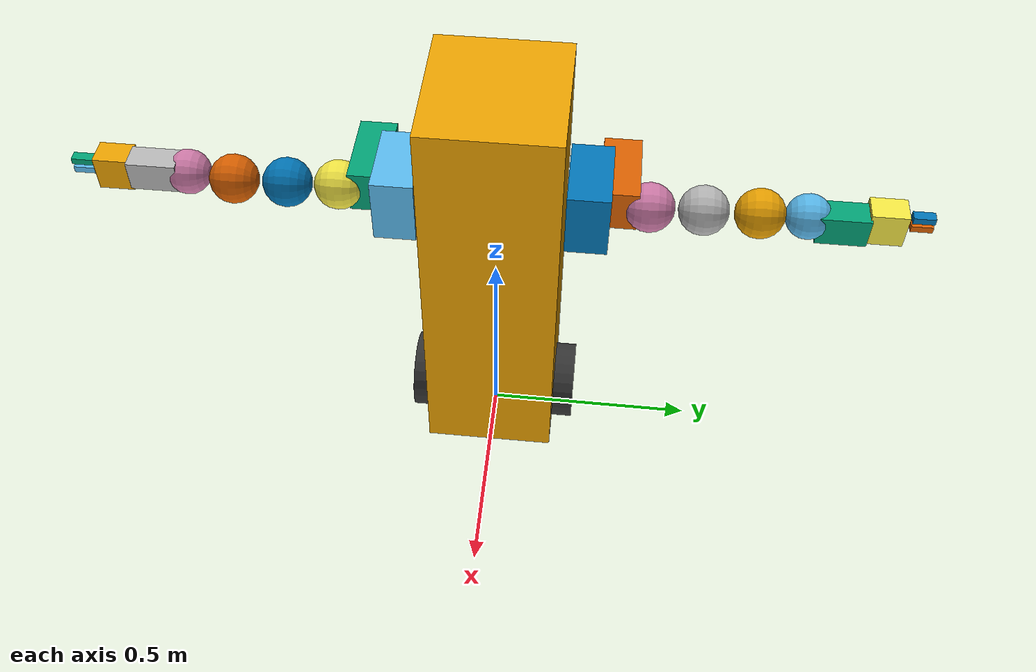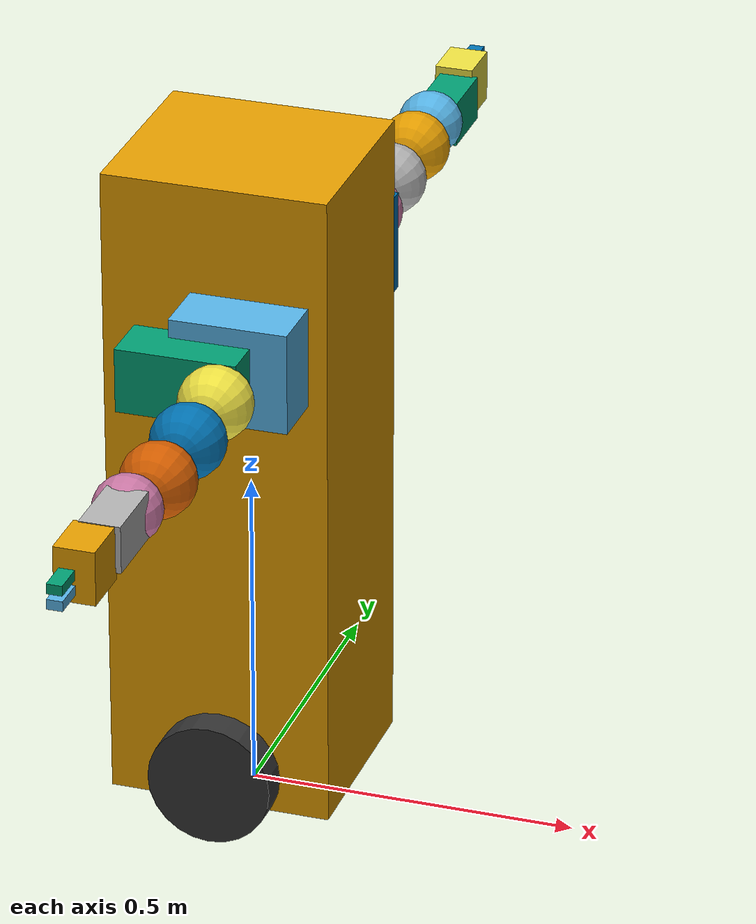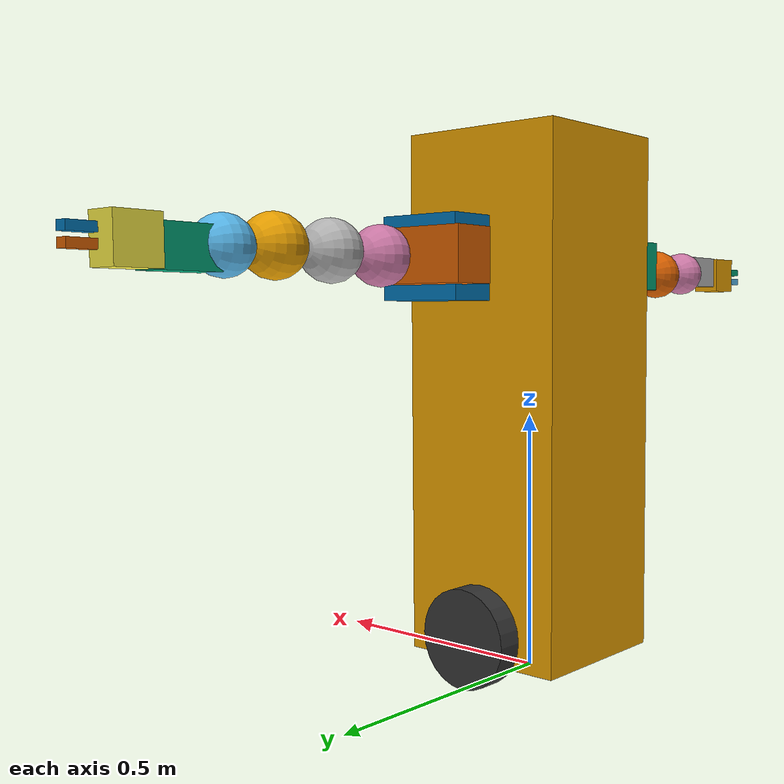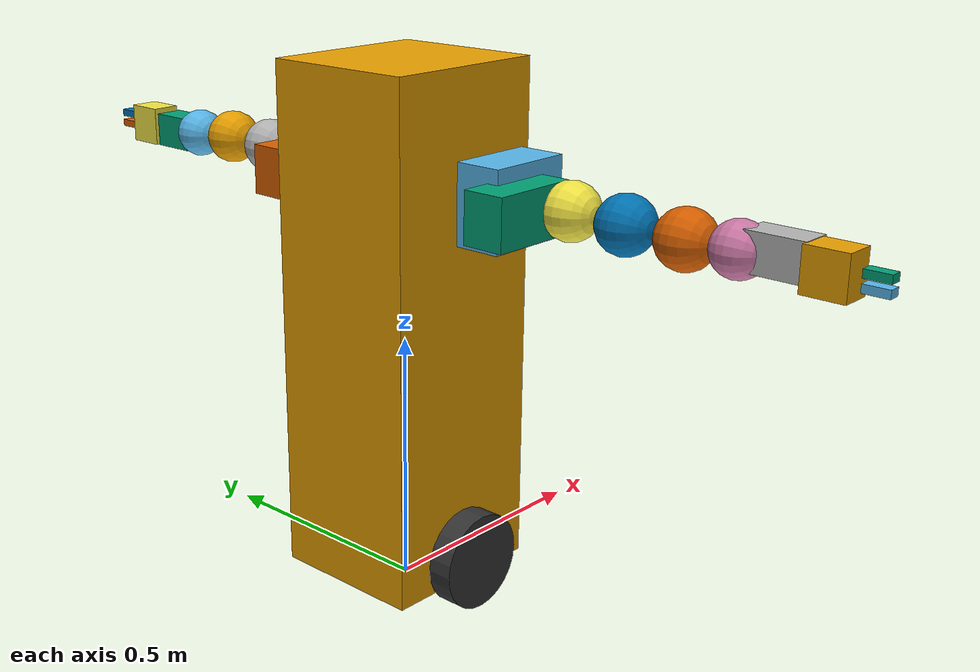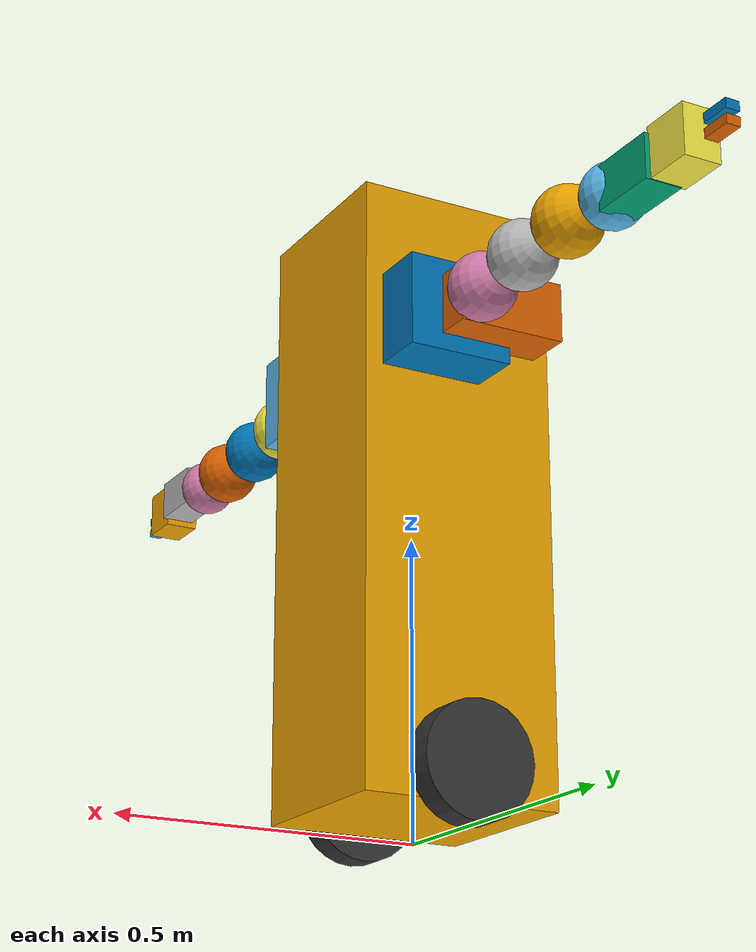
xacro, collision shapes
<?xml version="1.0"?>
<robot xmlns:xacro="http://www.ros.org/wiki/xacro" name="myTestRobot">
	<xacro:include filename="$(find cyton_gamma_1500_description)/cyton_gamma_1500_macros.urdf.xacro" />
	<link name="fixed_base">
		<visual>
			<origin rpy="0 0 0" xyz="0 0 0.54"																																																																		/>
			<geometry>
				<box size="0.34 0.31 1.0"/>
			</geometry>
		</visual>
		<collision>
			<origin rpy="0 0 0" xyz="0 0 0.54"/>
			<geometry>
				<box size="0.34 0.31 1.0"/>
			</geometry>
		</collision>

		<inertial>
			<origin rpy="0 0 0" xyz="0.0 0.0 0.5"/>
			<mass value="12"/>
			<!-- inretia tensor for solid cuboid: m=12, h=1.12, d=0.49, w=0.41 -->
			<inertia ixx="1.4225" ixy="0" ixz="0" iyy="1.4945" iyz="0" izz="0.4082"/>
		</inertial>

	</link>

	<joint name="right_arm_joint" type="fixed">
		<parent link="fixed_base"/>
		<child link="right_arm_base_link"/>
		<!--origin rpy="0 0 0" xyz="0 0.25 0.05"/-->
		<origin rpy="1.5708 -1.5708 0" xyz="0.067 -0.162 0.8"/>
	</joint>

	<xacro:cyton_gamma_1500 prefix="right_arm_" virtual_ee="true" />

	<joint name="left_arm_joint" type="fixed">
		<parent link="fixed_base"/>
		<child link="left_arm_base_link"/>
		<!--origin rpy="0 0 0" xyz="0 -0.3 0.05"/-->
		<origin rpy="-1.5708 1.5708 0" xyz="0.067 0.162 0.8"/>
	</joint>

	<xacro:cyton_gamma_1500 prefix="left_arm_" virtual_ee="true" />

	<joint name="wheel_left_joint" type="continuous">
    <parent link="fixed_base"/>
    <child link="wheel_left"/>
    <origin rpy="1.570796 0 0" xyz="0.0 0.18 0.095"/>
    <axis xyz="0 0 1"/>
  </joint>

  <link name="wheel_left">
    <inertial>
      <origin rpy="0 0 0" xyz="0.0 0 0"/>
      <mass value="0.5"/>
      <!-- inretia tensor for solid cylinder: m=0.5, h=0.05, r=0.095 -->
      <inertia ixx="1.232291667e-03" ixy="0" ixz="0" iyy="1.232291667e-03" iyz="0" izz="2.25625e-03"/>
    </inertial>
    <visual>
      <origin rpy="0 0 0" xyz="0 0 0"/>
      <geometry>
        <cylinder length="0.05" radius="0.095"/>
      </geometry>
      <material name="blackish">
        <color rgba="0.2 0.2 0.2 1"/>
      </material>
    </visual>
    <collision>
      <origin rpy="0 0 0" xyz="0 0 0"/>
      <geometry>
        <cylinder length="0.05" radius="0.095"/>
      </geometry>
    </collision>
  </link>

  <joint name="wheel_right_joint" type="continuous">
    <parent link="fixed_base"/>
    <child link="wheel_right"/>
    <origin rpy="1.570796 0 0" xyz="0.0 -0.18 0.095"/>
    <axis xyz="0 0 1"/>
  </joint>
  <link name="wheel_right">
    <inertial>
      <origin rpy="0 0 0" xyz="0.0 0 0"/>
      <mass value="0.5"/>
      <!-- inretia tensor for solid cylinder: m=0.5, h=0.05, r=0.095 -->
      <inertia ixx="1.232291667e-03" ixy="0" ixz="0" iyy="1.232291667e-03" iyz="0" izz="2.25625e-03"/>
    </inertial>
    <visual>
      <origin rpy="0 0 0" xyz="0 0 0"/>
      <geometry>
        <cylinder length="0.05" radius="0.095"/>
      </geometry>
      <material name="blackish"/>
    </visual>
    <collision>
      <origin rpy="0 0 0" xyz="0 0 0"/>
      <geometry>
        <cylinder length="0.05" radius="0.095"/>
      </geometry>
    </collision>
  </link>

</robot>

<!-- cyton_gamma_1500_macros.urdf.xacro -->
<robot xmlns:xacro="http://www.ros.org/wiki/xacro" name="cyton_gamma_1500">

  <xacro:macro name="base_footprint" params="prefix">
    <link name="base_footprint">
      <visual>
        <origin xyz="0 0 0" rpy="0 0 0"/>
        <geometry>
          <sphere radius="0.001" />
        </geometry>
        <material name="white">
          <color rgba="1 1 1 1"/>
        </material>
      </visual>
    </link>

    <joint name="base_joint" type="fixed">
      <parent link="base_footprint" />
      <child link="${prefix}base_link" />
      <origin xyz="0.0 0.0 0.0" rpy="0 0 0" />
    </joint>
  </xacro:macro>

  <xacro:macro name="cyton_gamma_1500" params="prefix virtual_ee">
    <link name="${prefix}base_link">
      <visual>
        <origin xyz="0 0 0" rpy="0 0 0"/>
        <geometry>
          <mesh filename="package://cyton_gamma_1500_description/meshes/base.dae"/>
        </geometry>
      </visual>

	  <inertial>
      <mass value="100.0"/>
      <origin rpy="0 0 0" xyz="0 0 0"/>
      <inertia ixx="1.1027" iyy="1.1027" izz="1.1027"
                ixy="0" ixz="0" iyz="0"/>
    </inertial>
      <collision>
        <origin xyz="0 0.0115 0.047"/>
        <geometry>
          <box size="0.154 0.177 0.094"/>
        </geometry>
      </collision>
    </link>

    <joint name="${prefix}shoulder_roll_joint" type="revolute">
      <parent link="${prefix}base_link" />
      <child link="${prefix}shoulder_roll" />
      <origin xyz="0 0 0.05315" rpy="0 0 0" />
      <limit lower="-2.618" upper="2.618" effort="100.0" velocity="1.0" />
      <axis xyz="0 0 1" />
    </joint>

    <link name="${prefix}shoulder_roll">
      <visual>
        <origin xyz="0 0 0" rpy="1.5708 0 0.384"/>
        <geometry>
          <mesh filename="package://cyton_gamma_1500_description/meshes/shoulder_roll.dae"/>
        </geometry>
      </visual>
      <collision>
        <origin xyz="0.0 0.069 0.0587"/>
        <geometry>
          <box size="0.09829 0.18143 0.08392"/>
        </geometry>
      </collision>
	  <inertial>
        <mass value="50.0"/>
        <origin rpy="0 0 0" xyz="0 0 0"/>
        <inertia ixx=".1027" iyy=".1027" izz=".1027"
                ixy="0" ixz="0" iyz="0"/>
      </inertial>

    </link>

    <joint name="${prefix}shoulder_pitch_joint" type="revolute">
      <parent link="${prefix}shoulder_roll" />
      <child link="${prefix}shoulder_pitch" />
      <origin xyz="0.0205 0 0.12435" rpy="0 0 0" />
      <limit lower="-1.8326" upper="1.8326" effort="100.0" velocity="1.0" />
      <axis xyz="1 0 0" />
    </joint>

	<transmission name="${prefix}tran1">
    <type>transmission_interface/SimpleTransmission</type>
    <joint name="${prefix}shoulder_roll_joint">
      <hardwareInterface>hardware_interface/PositionJointInterface</hardwareInterface>
    </joint>
    <actuator name="${prefix}motor1">
      <hardwareInterface>hardware_interface/PositionJointInterface</hardwareInterface>
    </actuator>
  </transmission>

    <link name="${prefix}shoulder_pitch">
      <visual>
        <origin xyz="0 0 0" rpy="1.5708 0 0" />
        <geometry>
          <mesh filename="package://cyton_gamma_1500_description/meshes/shoulder_pitch.dae"/>
        </geometry>
      </visual>
      <collision>
      <origin xyz="-0.02 0.0 0.0"/>
      <geometry>
	<sphere radius="0.055"/>
        <!--box size="0.098 0.08 0.11"/-->
      </geometry>
    </collision>
    <inertial>
      <mass value="20.0"/>
      <origin rpy="0 0 0" xyz="0 0 0"/>
      <inertia ixx=".0827" iyy=".0827" izz=".0827"
                ixy="0" ixz="0" iyz="0"/>
    </inertial>
    </link>

    <joint name="${prefix}shoulder_yaw_joint" type="revolute">
      <parent link="${prefix}shoulder_pitch" />
      <child link="${prefix}shoulder_yaw" />
      <origin xyz="-0.0215 -0.0205 0.1255" rpy="0 0 0" />
      <limit lower="-1.8326" upper="1.8326" effort="100.0" velocity="1.0" />
      <axis xyz="0 -1 0" />
    </joint>

	<transmission name="${prefix}tran2">
      <type>transmission_interface/SimpleTransmission</type>
      <joint name="${prefix}shoulder_pitch_joint">
        <hardwareInterface>hardware_interface/PositionJointInterface</hardwareInterface>
      </joint>
      <actuator name="${prefix}motor2">
        <hardwareInterface>hardware_interface/PositionJointInterface</hardwareInterface>
      </actuator>
    </transmission>

    <link name="${prefix}shoulder_yaw">
      <visual>
        <origin xyz="0 0 0.0" rpy="1.5708 0 -1.5708" />
        <geometry>
          <mesh filename="package://cyton_gamma_1500_description/meshes/shoulder_yaw.dae"/>
        </geometry>
      </visual>
      <collision>
		<origin xyz=" -0.002 0.02 -0.01"/>
		<geometry>
			<sphere radius="0.055"/>
			<!--box size="0.08 0.1 0.11"/-->
		</geometry>
	  </collision>
      <inertial>
		<mass value="10.0"/>
		<origin rpy="0 0 0" xyz="0 0 0"/>
		<inertia ixx=".0627" iyy=".0627" izz=".0627"
                ixy="0" ixz="0" iyz="0"/>
      </inertial>
    </link>

	<transmission name="${prefix}tran3">
    <type>transmission_interface/SimpleTransmission</type>
    <joint name="${prefix}shoulder_yaw_joint">
      <hardwareInterface>hardware_interface/PositionJointInterface</hardwareInterface>
    </joint>
    <actuator name="${prefix}motor3">
      <hardwareInterface>hardware_interface/PositionJointInterface</hardwareInterface>
    </actuator>
  </transmission>

    <joint name="${prefix}elbow_pitch_joint" type="revolute">
      <parent link="${prefix}shoulder_yaw" />
      <child link="${prefix}elbow_pitch" />
      <origin xyz="0.018 0.0206 0.1158" rpy="0 0 0" />
      <limit lower="-1.8326" upper="1.8326" effort="100.0" velocity="1.0" />
      <axis xyz="1 0 0" />
    </joint>

    <link name="${prefix}elbow_pitch">
      <visual>
        <origin xyz="0 0 0" rpy="1.5708 0 3.1416" />
        <geometry>
          <mesh filename="package://cyton_gamma_1500_description/meshes/elbow_pitch.dae"/>
        </geometry>
      </visual>
      <collision>
      <origin xyz="-0.022 0.0 -0.006"/>
      <geometry>
		<sphere radius="0.055"/>
        <!--box size="0.09 0.1 0.11"/-->
      </geometry>
      </collision>
      <inertial>
		<mass value="10.0"/>
		<origin rpy="0 0 0" xyz="0 0 0"/>
		<inertia ixx=".0327" iyy=".0327" izz=".0327"
                ixy="0" ixz="0" iyz="0"/>
      </inertial>
    </link>

	<transmission name="${prefix}tran4">
		<type>transmission_interface/SimpleTransmission</type>
		<joint name="${prefix}elbow_pitch_joint">
			<hardwareInterface>hardware_interface/PositionJointInterface</hardwareInterface>
		</joint>
		<actuator name="${prefix}motor4">
			<hardwareInterface>hardware_interface/PositionJointInterface</hardwareInterface>
		</actuator>
	</transmission>

    <joint name="${prefix}elbow_yaw_joint" type="revolute">
      <parent link="${prefix}elbow_pitch" />
      <child link="${prefix}elbow_yaw" />
      <origin xyz="-0.0171 -0.018 0.09746" rpy="0 0 0" />
      <limit lower="-1.8326" upper="1.8326" effort="100.0" velocity="1.0" />
      <axis xyz="0 -1 0" />
    </joint>

    <link name="${prefix}elbow_yaw">
      <visual>
        <origin xyz="0 0 0" rpy="1.5708 0 1.5708" />
        <geometry>
          <mesh filename="package://cyton_gamma_1500_description/meshes/elbow_yaw.dae"/>
        </geometry>
      </visual>
      <collision>
		<origin xyz="0.0 0.025 0.0"/>
		<geometry>
			<sphere radius="0.05"/>
		</geometry>
		</collision>
		<inertial>
			<mass value="10.0"/>
			<origin rpy="0 0 0" xyz="0 0 0"/>
			<inertia ixx=".0227" iyy=".0227" izz=".0227"
                ixy="0" ixz="0" iyz="0"/>
		</inertial>
    </link>

	<transmission name="${prefix}tran5">
    <type>transmission_interface/SimpleTransmission</type>
    <joint name="${prefix}elbow_yaw_joint">
      <hardwareInterface>hardware_interface/PositionJointInterface</hardwareInterface>
    </joint>
    <actuator name="${prefix}motor5">
      <hardwareInterface>hardware_interface/PositionJointInterface</hardwareInterface>
    </actuator>
  </transmission>

    <joint name="${prefix}wrist_pitch_joint" type="revolute">
      <parent link="${prefix}elbow_yaw" />
      <child link="${prefix}wrist_pitch" />
      <origin xyz="0.02626 0.018 0.0718" rpy="0 0 0" />
      <limit lower="-1.8326" upper="1.8326" effort="100.0" velocity="1.0" />
      <axis xyz="-1 0 0" />
    </joint>

    <link name="${prefix}wrist_pitch">
      <visual>
        <origin xyz="0 0 0" rpy="1.5708 0 1.5708" />
        <geometry>
          <mesh filename="package://cyton_gamma_1500_description/meshes/wrist_pitch.dae"/>
        </geometry>
      </visual>
      <collision>
		<origin xyz="-0.02 0.0 0.0"/>
		<geometry>
			<box size="0.07 0.06 0.11"/>
		</geometry>
		</collision>
		<inertial>
			<mass value="10.0"/>
			<origin rpy="0 0 0" xyz="0 0 0"/>
			<inertia ixx=".0127" iyy=".0127" izz=".0127"
                ixy="0" ixz="0" iyz="0"/>
		</inertial>
    </link>
	<transmission name="${prefix}tran6">
		<type>transmission_interface/SimpleTransmission</type>
		<joint name="${prefix}wrist_pitch_joint">
			<hardwareInterface>hardware_interface/PositionJointInterface</hardwareInterface>
		</joint>
		<actuator name="${prefix}motor6">
			<hardwareInterface>hardware_interface/PositionJointInterface</hardwareInterface>
		</actuator>
    </transmission>

    <joint name="${prefix}wrist_roll_joint" type="revolute">
      <parent link="${prefix}wrist_pitch" />
      <child link="${prefix}wrist_roll" />
      <origin xyz="-0.026255 0 0.051425" rpy="0 0 0" />
      <limit lower="-2.61799" upper="2.61799" effort="100.0" velocity="1.0" />
      <axis xyz="0 0 1" />
    </joint>

    <link name="${prefix}wrist_roll">
      <visual>
        <origin xyz="0 0 0" rpy="3.1416 0 -1.5708" />
        <geometry>
          <mesh filename="package://cyton_gamma_1500_description/meshes/wrist_roll.dae"/>
        </geometry>
      </visual>
      <collision>
		<origin xyz="0.0 0.008 0.04"/>
		<geometry>
			<box size="0.08 0.06 0.08"/>
		</geometry>
	  </collision>
	  <inertial>
			<mass value="10.0"/>
			<origin rpy="0 0 0" xyz="0 0 0"/>
			<inertia ixx=".0027" iyy=".0027" izz=".0027"
                ixy="0" ixz="0" iyz="0"/>
	  </inertial>
    </link>

	<transmission name="${prefix}tran7">
		<type>transmission_interface/SimpleTransmission</type>
		<joint name="${prefix}wrist_roll_joint">
			<hardwareInterface>hardware_interface/PositionJointInterface</hardwareInterface>
		</joint>
		<actuator name="${prefix}motor7">
			<hardwareInterface>hardware_interface/PositionJointInterface</hardwareInterface>
		</actuator>
	</transmission>

    <joint name="${prefix}gripper_joint" type="prismatic">
      <parent link="${prefix}wrist_roll" />
      <child link="${prefix}gripper_finger1" />
      <origin xyz="-0.01331 0.00485 0.077225" rpy="0 0 0" />
      <limit lower="-0.008" upper="0.008" effort="100.0" velocity="1.0" />
      <axis xyz="1 0 0" />
    </joint>

    <link name="${prefix}gripper_finger1">
      <visual>
        <origin xyz="0 0 0" rpy="0 0 0" />
        <geometry>
          <mesh filename="package://cyton_gamma_1500_description/meshes/gripper_finger1.dae"/>
        </geometry>
      </visual>
      <collision>
        <!--origin xyz="-0.0167 0.0172 0.7254"/-->
		<origin xyz="0.0 0.008 0.04"/>
        <geometry>
          <box size="0.015 0.0229 0.0475"/>
        </geometry>
      </collision>
	  <inertial>
      <!--origin rpy="0 0 0" xyz="0.0034 0.0096 0.017"/-->
		<origin rpy="0 0 0" xyz="0 0 0"/>
		<mass value="0.035"/>
		<!-- inretia tensor for solid cuboid: m=0.035, h=0.0323, w=0.01469, d=0.0224 -->
		<inertia ixx="4.5064e-06" ixy="0" ixz="0" iyy="3.6723e-06" iyz="0" izz="2.0929e-06"/>
		</inertial>
    </link>

	<transmission name="${prefix}tran8">
		<type>transmission_interface/SimpleTransmission</type>
		<joint name="${prefix}gripper_joint">
			<hardwareInterface>hardware_interface/PositionJointInterface</hardwareInterface>
		</joint>
		<actuator name="${prefix}motor8">
			<hardwareInterface>hardware_interface/PositionJointInterface</hardwareInterface>
		</actuator>
	</transmission>

    <joint name="${prefix}gripper_joint2" type="prismatic">
      <parent link="${prefix}wrist_roll" />
      <child link="${prefix}gripper_finger2" />
      <origin xyz="0.0098 0.00485 0.077225" rpy="0 0 0" />
      <limit lower="-0.008" upper="0.008" effort="100.0" velocity="1.0" />
      <mimic joint="${prefix}gripper_joint" multiplier="-1"/>
      <axis xyz="1 0 0" />
    </joint>

    <link name="${prefix}gripper_finger2">
      <visual>
        <origin xyz="0 0 0" rpy="0 0 0" />
        <geometry>
          <mesh filename="package://cyton_gamma_1500_description/meshes/gripper_finger2.dae"/>
        </geometry>
      </visual>
     <collision>
		<!--origin xyz="0.0132 0.0172 0.7254"/-->
		<origin xyz="0.0 0.008 0.04"/>
		<geometry>
			<box size="0.015 0.0229 0.0475"/>
		</geometry>
		</collision>
	  <inertial>
		<!--origin rpy="0 0 0" xyz="0.0034 0.0096 0.017"/-->
		<origin rpy="0 0 0" xyz="0 0 0"/>
		<mass value="0.035"/>
		<!-- inretia tensor for solid cuboid: m=0.035, h=0.0323, w=0.01469, d=0.0224 -->
		<inertia ixx="4.5064e-06" ixy="0" ixz="0" iyy="3.6723e-06" iyz="0" izz="2.0929e-06"/>
		</inertial>
    </link>

	<transmission name="${prefix}tran9">
		<type>transmission_interface/SimpleTransmission</type>
		<joint name="${prefix}gripper_joint2">
			<hardwareInterface>hardware_interface/PositionJointInterface</hardwareInterface>
		</joint>
		<actuator name="${prefix}motor9">
			<hardwareInterface>hardware_interface/PositionJointInterface</hardwareInterface>
		</actuator>
	</transmission>

    <xacro:if value="${virtual_ee}"> <!-- virtual end-effector -->
      <joint name="${prefix}virtual_endeffector_joint" type="fixed">
        <parent link="${prefix}wrist_roll" />
        <child link="${prefix}virtual_endeffector" />
        <origin xyz="-0.002316 0.0079 0.079425" rpy="0 0 0" />
      </joint>

      <link name="${prefix}virtual_endeffector">
        <visual>
          <origin xyz="0 0 0" rpy="0 0 0" />
          <geometry>
            <sphere radius="0.002" />
          </geometry>
          <material name="grey">
            <color rgba="0.7 0.7 0.7 0.8" />
          </material>
        </visual>
      </link>
    </xacro:if>
  </xacro:macro>

</robot>
